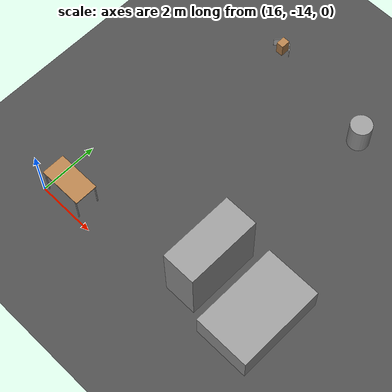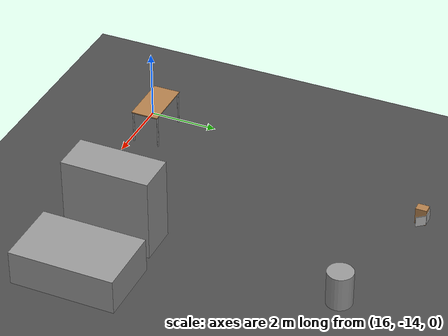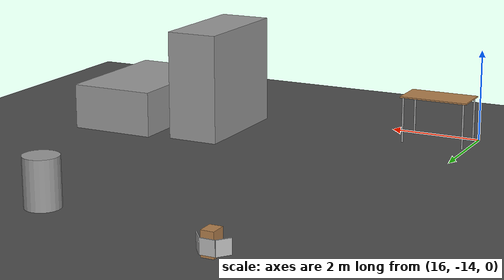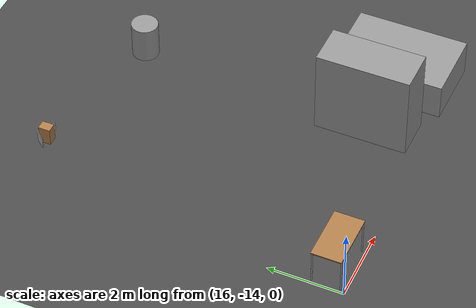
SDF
<sdf version="1.6">
 <world name="default">
  <model name="ground_plane">
   <static>1</static>
   <link name="link">
    <collision name="collision">
     <geometry><plane><normal>0 0 1</normal><size>100 100</size></plane></geometry>
     <surface><friction><ode><mu>100</mu><mu2>50</mu2></ode></friction></surface>
    </collision>
    <visual name="visual">
     <cast_shadows>0</cast_shadows>
     <geometry><plane><normal>0 0 1</normal><size>100 100</size></plane></geometry>
     <material>
      <script><uri>file://media/materials/scripts/gazebo.material</uri><name>Gazebo/DarkGrey</name></script>
     </material>
    </visual>
   </link>
  </model>
  <model name="unit_box_1_clone_2">
   <pose>23.5687 -12.4542 0.499989 0 -1.2e-05 -0.000269</pose>
   <link name="link">
    <inertial>
     <mass>1</mass>
     <inertia>
      <ixx>0.166667</ixx>
      <ixy>0</ixy>
      <ixz>0</ixz>
      <iyy>0.166667</iyy>
      <iyz>0</iyz>
      <izz>0.166667</izz>
     </inertia>
    </inertial>
    <collision name="collision"><geometry><box><size>1.90543 2.99439 1</size></box></geometry></collision>
    <visual name="visual">
     <geometry><box><size>1.90543 2.99439 1</size></box></geometry>
     <material>
      <script><name>Gazebo/Grey</name><uri>file://media/materials/scripts/gazebo.material</uri></script>
     </material>
    </visual>
   </link>
  </model>
  <model name="unit_cylinder_clone_1">
   <pose>21.7711 -5.90074 0.499992 0 -0 0</pose>
   <link name="link">
    <inertial>
     <mass>1</mass>
     <inertia><ixx>0.145833</ixx><ixy>0</ixy><ixz>0</ixz><iyy>0.145833</iyy><iyz>0</iyz><izz>0.125</izz></inertia>
    </inertial>
    <collision name="collision">
     <geometry><cylinder><radius>0.361483</radius><length>1</length></cylinder></geometry>
    </collision>
    <visual name="visual">
     <geometry><cylinder><radius>0.361483</radius><length>1</length></cylinder></geometry>
     <material>
      <script><name>Gazebo/Grey</name><uri>file://media/materials/scripts/gazebo.material</uri></script>
     </material>
    </visual>
   </link>
  </model>
  <model name="unit_box_2_clone_1">
   <pose>21.5822 -12.3633 1.1904 4e-06 -1e-06 8.5e-05</pose>
   <link name="link">
    <inertial>
     <mass>1</mass>
     <inertia>
      <ixx>0.166667</ixx>
      <ixy>0</ixy>
      <ixz>0</ixz>
      <iyy>0.166667</iyy>
      <iyz>0</iyz>
      <izz>0.166667</izz>
     </inertia>
    </inertial>
    <collision name="collision"><geometry><box><size>1.13758 2.51147 2.38082</size></box></geometry></collision>
    <visual name="visual">
     <geometry><box><size>1.13758 2.51147 2.38082</size></box></geometry>
     <material>
      <script><name>Gazebo/Grey</name><uri>file://media/materials/scripts/gazebo.material</uri></script>
     </material>
    </visual>
   </link>
  </model>
  <model name="table_clone_1">
   <static>1</static>
   <link name="link">
    <collision name="surface">
     <pose>0 0 1 0 -0 0</pose>
     <geometry><box><size>1.5 0.8 0.03</size></box></geometry>
     <surface><friction><ode><mu>0.6</mu><mu2>0.6</mu2></ode></friction></surface>
    </collision>
    <visual name="visual1">
     <pose>0 0 1 0 -0 0</pose>
     <geometry><box><size>1.5 0.8 0.03</size></box></geometry>
     <material>
      <script><uri>file://media/materials/scripts/gazebo.material</uri><name>Gazebo/Wood</name></script>
     </material>
    </visual>
    <collision name="front_left_leg">
     <pose>0.68 0.38 0.5 0 -0 0</pose>
     <geometry><cylinder><radius>0.02</radius><length>1</length></cylinder></geometry>
    </collision>
    <visual name="front_left_leg">
     <pose>0.68 0.38 0.5 0 -0 0</pose>
     <geometry><cylinder><radius>0.02</radius><length>1</length></cylinder></geometry>
     <material>
      <script><uri>file://media/materials/scripts/gazebo.material</uri><name>Gazebo/Grey</name></script>
     </material>
    </visual>
    <collision name="front_right_leg">
     <pose>0.68 -0.38 0.5 0 -0 0</pose>
     <geometry><cylinder><radius>0.02</radius><length>1</length></cylinder></geometry>
    </collision>
    <visual name="front_right_leg">
     <pose>0.68 -0.38 0.5 0 -0 0</pose>
     <geometry><cylinder><radius>0.02</radius><length>1</length></cylinder></geometry>
     <material>
      <script><uri>file://media/materials/scripts/gazebo.material</uri><name>Gazebo/Grey</name></script>
     </material>
    </visual>
    <collision name="back_right_leg">
     <pose>-0.68 -0.38 0.5 0 -0 0</pose>
     <geometry><cylinder><radius>0.02</radius><length>1</length></cylinder></geometry>
    </collision>
    <visual name="back_right_leg">
     <pose>-0.68 -0.38 0.5 0 -0 0</pose>
     <geometry><cylinder><radius>0.02</radius><length>1</length></cylinder></geometry>
     <material>
      <script><uri>file://media/materials/scripts/gazebo.material</uri><name>Gazebo/Grey</name></script>
     </material>
    </visual>
    <collision name="back_left_leg">
     <pose>-0.68 0.38 0.5 0 -0 0</pose>
     <geometry><cylinder><radius>0.02</radius><length>1</length></cylinder></geometry>
    </collision>
    <visual name="back_left_leg">
     <pose>-0.68 0.38 0.5 0 -0 0</pose>
     <geometry><cylinder><radius>0.02</radius><length>1</length></cylinder></geometry>
     <material>
      <script><uri>file://media/materials/scripts/gazebo.material</uri><name>Gazebo/Grey</name></script>
     </material>
    </visual>
   </link>
   <pose>16.7768 -13.4978 0 0 -0 0</pose>
  </model>
  <model name="Support_box_wood_clone_0_clone">
   <link name="link">
    <inertial>
     <mass>0.0406949</mass>
     <inertia>
      <ixx>0.00114102</ixx>
      <ixy>0</ixy>
      <ixz>0</ixz>
      <iyy>0.00102768</iyy>
      <iyz>0</iyz>
      <izz>0.000581951</izz>
     </inertia>
    </inertial>
    <pose>0.062754 0.860403 -0.243846 0 -0 0</pose>
    <visual name="visual">
     <geometry><box><size>0.252854 0.320175 0.483682</size></box></geometry>
     <material>
      <script><name>Gazebo/Wood</name><uri>file://media/materials/scripts/gazebo.material</uri></script>
      <shader type="vertex"><normal_map>__default__</normal_map></shader>
      <ambient>0.3 0.3 0.3 1</ambient>
      <diffuse>0.7 0.7 0.7 1</diffuse>
      <specular>0.01 0.01 0.01 1</specular>
      <emissive>0 0 0 1</emissive>
     </material>
    </visual>
    <visual name="ModelPreview_4::link::visual_1">
     <geometry><box><size>0.252854 0.320175 0.483682</size></box></geometry>
     <material>
      <script><name>Gazebo/Wood</name><uri>file://media/materials/scripts/gazebo.material</uri></script>
      <shader type="vertex"><normal_map>__default__</normal_map></shader>
      <ambient>0.3 0.3 0.3 1</ambient>
      <diffuse>0.7 0.7 0.7 1</diffuse>
      <specular>0.01 0.01 0.01 1</specular>
      <emissive>0 0 0 1</emissive>
     </material>
    </visual>
    <collision name="collision">
     <geometry><box><size>0.262854 0.320175 0.483683</size></box></geometry>
     <surface>
      <friction>
       <ode><mu>1</mu><mu2>1</mu2><fdir1>0 0 0</fdir1><slip1>0</slip1><slip2>0</slip2></ode>
       <torsional>
        <coefficient>1</coefficient>
        <patch_radius>0</patch_radius>
        <surface_radius>0</surface_radius>
        <use_patch_radius>1</use_patch_radius>
        <ode><slip>0</slip></ode>
       </torsional>
      </friction>
      <bounce><restitution_coefficient>0</restitution_coefficient><threshold>1e+06</threshold></bounce>
      <contact>
       <collide_without_contact>0</collide_without_contact>
       <collide_without_contact_bitmask>1</collide_without_contact_bitmask>
       <collide_bitmask>1</collide_bitmask>
       <ode>
        <soft_cfm>0</soft_cfm>
        <soft_erp>0.2</soft_erp>
        <kp>1e+13</kp>
        <kd>1</kd>
        <max_vel>0.01</max_vel>
        <min_depth>0</min_depth>
       </ode>
       <bullet>
        <split_impulse>1</split_impulse>
        <split_impulse_penetration_threshold>-0.01</split_impulse_penetration_threshold>
        <soft_cfm>0</soft_cfm>
        <soft_erp>0.2</soft_erp>
        <kp>1e+13</kp>
        <kd>1</kd>
       </bullet>
      </contact>
     </surface>
    </collision>
   </link>
   <static>0</static>
   <pose>17.672 -5.92559 0.485688 0 -0 9e-05</pose>
  </model>
  <model name="Aruco tag103">
   <static>1</static>
   <link name="robot_link">
    <visual name="body_visual">
     <geometry><box><size>0.3 0.3 0.02</size></box></geometry>
     <material>
      <script><uri>model://tag_103/materials/scripts/tag.material</uri><name>aruco_tag_103</name></script>
     </material>
    </visual>
   </link>
   <pose>17.7298 -4.89713 0.2 1.57 -0 0</pose>
  </model>
  <model name="Aruco tag103_clone">
   <static>1</static>
   <link name="robot_link">
    <visual name="body_visual">
     <geometry><box><size>0.3 0.3 0.02</size></box></geometry>
     <material>
      <script><uri>model://tag_103/materials/scripts/tag.material</uri><name>aruco_tag_103</name></script>
     </material>
    </visual>
   </link>
   <pose>17.9772 -5.01727 0.2 1.57025 -0.000575 -0.91</pose>
  </model>
  <model name="Aruco tag103_clone_0">
   <static>1</static>
   <link name="robot_link">
    <visual name="body_visual">
     <geometry><box><size>0.3 0.3 0.02</size></box></geometry>
     <material>
      <script><uri>model://tag_103/materials/scripts/tag.material</uri><name>aruco_tag_103</name></script>
     </material>
    </visual>
   </link>
   <pose>17.4841 -5.01417 0.2 1.57 -0 0.909999</pose>
  </model>
 </world>
</sdf>
